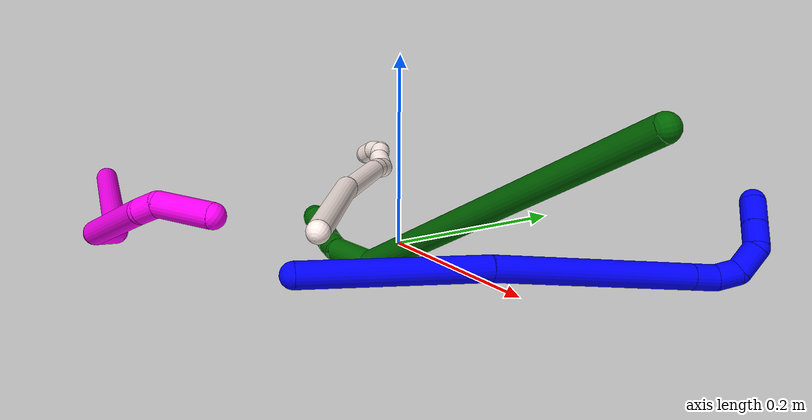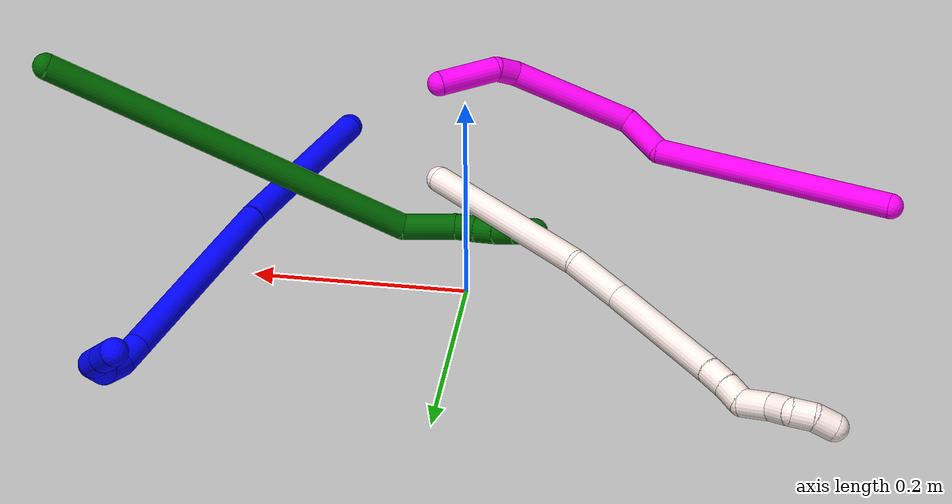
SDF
<sdf version="1.7">
 <world name="default">
  <model name="1">
   <static>0</static>
   <link name="1">
    <collision name="collision-cylinder-e_1_1_4">
     <pose>0.017585 0.034183 -0.079534 -2.73567 0.200402 -0.90886</pose>
     <geometry><cylinder><radius>0.0125</radius><length>0.176673</length></cylinder></geometry>
     <surface>
      <friction><ode><mu>1.16</mu><mu2>1.16</mu2><slip1>0</slip1><slip2>0</slip2></ode></friction>
      <contact><ode><kp>1e+06</kp><kd>1</kd><max_vel>0</max_vel><min_depth>0.001</min_depth></ode></contact>
     </surface>
    </collision>
    <visual name="visual-cylinder-e_1_1_4">
     <pose>0.017585 0.034183 -0.079534 -2.73567 0.200402 -0.90886</pose>
     <geometry><cylinder><radius>0.0125</radius><length>0.176673</length></cylinder></geometry>
     <material><ambient>0 0 1 1</ambient></material>
    </visual>
    <collision name="collision-cylinder-e_2_4_5">
     <pose>0.054802 0.098646 -0.250079 -2.82042 0.201903 -1.1177</pose>
     <geometry><cylinder><radius>0.0125</radius><length>0.19581</length></cylinder></geometry>
     <surface>
      <friction><ode><mu>1.16</mu><mu2>1.16</mu2><slip1>0</slip1><slip2>0</slip2></ode></friction>
      <contact><ode><kp>1e+06</kp><kd>1</kd><max_vel>0</max_vel><min_depth>0.001</min_depth></ode></contact>
     </surface>
    </collision>
    <visual name="visual-cylinder-e_2_4_5">
     <pose>0.054802 0.098646 -0.250079 -2.82042 0.201903 -1.1177</pose>
     <geometry><cylinder><radius>0.0125</radius><length>0.19581</length></cylinder></geometry>
     <material><ambient>0 0 1 1</ambient></material>
    </visual>
    <collision name="collision-cylinder-e_3_5_6">
     <pose>0.076947 0.132714 -0.352514 -2.82135 0.205731 -1.13746</pose>
     <geometry><cylinder><radius>0.0125</radius><length>0.024589</length></cylinder></geometry>
     <surface>
      <friction><ode><mu>1.16</mu><mu2>1.16</mu2><slip1>0</slip1><slip2>0</slip2></ode></friction>
      <contact><ode><kp>1e+06</kp><kd>1</kd><max_vel>0</max_vel><min_depth>0.001</min_depth></ode></contact>
     </surface>
    </collision>
    <visual name="visual-cylinder-e_3_5_6">
     <pose>0.076947 0.132714 -0.352514 -2.82135 0.205731 -1.13746</pose>
     <geometry><cylinder><radius>0.0125</radius><length>0.024589</length></cylinder></geometry>
     <material><ambient>0 0 1 1</ambient></material>
    </visual>
    <collision name="collision-cylinder-e_4_6_7">
     <pose>0.081722 0.143566 -0.37281 -2.46918 0.19701 -0.551176</pose>
     <geometry><cylinder><radius>0.0125</radius><length>0.02313</length></cylinder></geometry>
     <surface>
      <friction><ode><mu>1.16</mu><mu2>1.16</mu2><slip1>0</slip1><slip2>0</slip2></ode></friction>
      <contact><ode><kp>1e+06</kp><kd>1</kd><max_vel>0</max_vel><min_depth>0.001</min_depth></ode></contact>
     </surface>
    </collision>
    <visual name="visual-cylinder-e_4_6_7">
     <pose>0.081722 0.143566 -0.37281 -2.46918 0.19701 -0.551176</pose>
     <geometry><cylinder><radius>0.0125</radius><length>0.02313</length></cylinder></geometry>
     <material><ambient>0 0 1 1</ambient></material>
    </visual>
    <collision name="collision-cylinder-e_5_7_8">
     <pose>0.081464 0.163594 -0.386623 -1.93493 -0.179819 0.260198</pose>
     <geometry><cylinder><radius>0.0125</radius><length>0.028201</length></cylinder></geometry>
     <surface>
      <friction><ode><mu>1.16</mu><mu2>1.16</mu2><slip1>0</slip1><slip2>0</slip2></ode></friction>
      <contact><ode><kp>1e+06</kp><kd>1</kd><max_vel>0</max_vel><min_depth>0.001</min_depth></ode></contact>
     </surface>
    </collision>
    <visual name="visual-cylinder-e_5_7_8">
     <pose>0.081464 0.163594 -0.386623 -1.93493 -0.179819 0.260198</pose>
     <geometry><cylinder><radius>0.0125</radius><length>0.028201</length></cylinder></geometry>
     <material><ambient>0 0 1 1</ambient></material>
    </visual>
    <collision name="collision-cylinder-e_6_8_9">
     <pose>0.069244 0.183883 -0.393903 -1.87991 -0.900366 1.16906</pose>
     <geometry><cylinder><radius>0.0125</radius><length>0.024755</length></cylinder></geometry>
     <surface>
      <friction><ode><mu>1.16</mu><mu2>1.16</mu2><slip1>0</slip1><slip2>0</slip2></ode></friction>
      <contact><ode><kp>1e+06</kp><kd>1</kd><max_vel>0</max_vel><min_depth>0.001</min_depth></ode></contact>
     </surface>
    </collision>
    <visual name="visual-cylinder-e_6_8_9">
     <pose>0.069244 0.183883 -0.393903 -1.87991 -0.900366 1.16906</pose>
     <geometry><cylinder><radius>0.0125</radius><length>0.024755</length></cylinder></geometry>
     <material><ambient>0 0 1 1</ambient></material>
    </visual>
    <collision name="collision-cylinder-e_7_9_2">
     <pose>0.049068 0.199212 -0.398754 -1.87489 -0.8957 1.15874</pose>
     <geometry><cylinder><radius>0.0125</radius><length>0.026842</length></cylinder></geometry>
     <surface>
      <friction><ode><mu>1.16</mu><mu2>1.16</mu2><slip1>0</slip1><slip2>0</slip2></ode></friction>
      <contact><ode><kp>1e+06</kp><kd>1</kd><max_vel>0</max_vel><min_depth>0.001</min_depth></ode></contact>
     </surface>
    </collision>
    <visual name="visual-cylinder-e_7_9_2">
     <pose>0.049068 0.199212 -0.398754 -1.87489 -0.8957 1.15874</pose>
     <geometry><cylinder><radius>0.0125</radius><length>0.026842</length></cylinder></geometry>
     <material><ambient>0 0 1 1</ambient></material>
    </visual>
    <collision name="collision-sphere-2">
     <pose>0.038591 0.207215 -0.401266 0 -0 0</pose>
     <geometry><sphere><radius>0.0125</radius></sphere></geometry>
     <surface>
      <friction><ode><mu>1.16</mu><mu2>1.16</mu2><slip1>0</slip1><slip2>0</slip2></ode></friction>
      <contact><ode><kp>1e+06</kp><kd>1</kd><max_vel>0</max_vel><min_depth>0.001</min_depth></ode></contact>
     </surface>
    </collision>
    <visual name="visual-sphere-2">
     <pose>0.038591 0.207215 -0.401266 0 -0 0</pose>
     <geometry><sphere><radius>0.0125</radius></sphere></geometry>
     <material><ambient>0 0 1 1</ambient></material>
    </visual>
    <collision name="collision-sphere-9">
     <pose>0.059545 0.191209 -0.396243 0 -0 0</pose>
     <geometry><sphere><radius>0.0125</radius></sphere></geometry>
     <surface>
      <friction><ode><mu>1.16</mu><mu2>1.16</mu2><slip1>0</slip1><slip2>0</slip2></ode></friction>
      <contact><ode><kp>1e+06</kp><kd>1</kd><max_vel>0</max_vel><min_depth>0.001</min_depth></ode></contact>
     </surface>
    </collision>
    <visual name="visual-sphere-9">
     <pose>0.059545 0.191209 -0.396243 0 -0 0</pose>
     <geometry><sphere><radius>0.0125</radius></sphere></geometry>
     <material><ambient>0 0 1 1</ambient></material>
    </visual>
    <collision name="collision-sphere-4">
     <pose>0.035169 0.068367 -0.159068 0 -0 0</pose>
     <geometry><sphere><radius>0.0125</radius></sphere></geometry>
     <surface>
      <friction><ode><mu>1.16</mu><mu2>1.16</mu2><slip1>0</slip1><slip2>0</slip2></ode></friction>
      <contact><ode><kp>1e+06</kp><kd>1</kd><max_vel>0</max_vel><min_depth>0.001</min_depth></ode></contact>
     </surface>
    </collision>
    <visual name="visual-sphere-4">
     <pose>0.035169 0.068367 -0.159068 0 -0 0</pose>
     <geometry><sphere><radius>0.0125</radius></sphere></geometry>
     <material><ambient>0 0 1 1</ambient></material>
    </visual>
    <collision name="collision-sphere-1">
     <geometry><sphere><radius>0.0125</radius></sphere></geometry>
     <surface>
      <friction><ode><mu>1.16</mu><mu2>1.16</mu2><slip1>0</slip1><slip2>0</slip2></ode></friction>
      <contact><ode><kp>1e+06</kp><kd>1</kd><max_vel>0</max_vel><min_depth>0.001</min_depth></ode></contact>
     </surface>
    </collision>
    <visual name="visual-sphere-1">
     <geometry><sphere><radius>0.0125</radius></sphere></geometry>
     <material><ambient>0 0 1 1</ambient></material>
    </visual>
    <collision name="collision-sphere-8">
     <pose>0.078942 0.176557 -0.391564 0 -0 0</pose>
     <geometry><sphere><radius>0.0125</radius></sphere></geometry>
     <surface>
      <friction><ode><mu>1.16</mu><mu2>1.16</mu2><slip1>0</slip1><slip2>0</slip2></ode></friction>
      <contact><ode><kp>1e+06</kp><kd>1</kd><max_vel>0</max_vel><min_depth>0.001</min_depth></ode></contact>
     </surface>
    </collision>
    <visual name="visual-sphere-8">
     <pose>0.078942 0.176557 -0.391564 0 -0 0</pose>
     <geometry><sphere><radius>0.0125</radius></sphere></geometry>
     <material><ambient>0 0 1 1</ambient></material>
    </visual>
    <collision name="collision-sphere-5">
     <pose>0.074436 0.128925 -0.341091 0 -0 0</pose>
     <geometry><sphere><radius>0.0125</radius></sphere></geometry>
     <surface>
      <friction><ode><mu>1.16</mu><mu2>1.16</mu2><slip1>0</slip1><slip2>0</slip2></ode></friction>
      <contact><ode><kp>1e+06</kp><kd>1</kd><max_vel>0</max_vel><min_depth>0.001</min_depth></ode></contact>
     </surface>
    </collision>
    <visual name="visual-sphere-5">
     <pose>0.074436 0.128925 -0.341091 0 -0 0</pose>
     <geometry><sphere><radius>0.0125</radius></sphere></geometry>
     <material><ambient>0 0 1 1</ambient></material>
    </visual>
    <collision name="collision-sphere-6">
     <pose>0.079459 0.136502 -0.363937 0 -0 0</pose>
     <geometry><sphere><radius>0.0125</radius></sphere></geometry>
     <surface>
      <friction><ode><mu>1.16</mu><mu2>1.16</mu2><slip1>0</slip1><slip2>0</slip2></ode></friction>
      <contact><ode><kp>1e+06</kp><kd>1</kd><max_vel>0</max_vel><min_depth>0.001</min_depth></ode></contact>
     </surface>
    </collision>
    <visual name="visual-sphere-6">
     <pose>0.079459 0.136502 -0.363937 0 -0 0</pose>
     <geometry><sphere><radius>0.0125</radius></sphere></geometry>
     <material><ambient>0 0 1 1</ambient></material>
    </visual>
    <collision name="collision-sphere-7">
     <pose>0.083986 0.15063 -0.381682 0 -0 0</pose>
     <geometry><sphere><radius>0.0125</radius></sphere></geometry>
     <surface>
      <friction><ode><mu>1.16</mu><mu2>1.16</mu2><slip1>0</slip1><slip2>0</slip2></ode></friction>
      <contact><ode><kp>1e+06</kp><kd>1</kd><max_vel>0</max_vel><min_depth>0.001</min_depth></ode></contact>
     </surface>
    </collision>
    <visual name="visual-sphere-7">
     <pose>0.083986 0.15063 -0.381682 0 -0 0</pose>
     <geometry><sphere><radius>0.0125</radius></sphere></geometry>
     <material><ambient>0 0 1 1</ambient></material>
    </visual>
    <inertial>
     <pose>0.045897 0.092904 -0.223336 0 -0 0</pose>
     <mass>0.5</mass>
     <inertia>
      <ixx>-0.000356</ixx>
      <ixy>0</ixy>
      <ixz>0</ixz>
      <iyy>-0.001363</iyy>
      <iyz>0</iyz>
      <izz>-0.000632</izz>
     </inertia>
    </inertial>
   </link>
   <pose>0.148053 -0.205701 0.042931 1.1837 0.25726 -0.151642</pose>
  </model>
  <model name="6">
   <static>0</static>
   <link name="6">
    <collision name="collision-cylinder-e_1_1_4">
     <pose>-0.135817 0.078696 -0.096194 -2.45592 -0.829713 1.77944</pose>
     <geometry><cylinder><radius>0.0125</radius><length>0.368199</length></cylinder></geometry>
     <surface>
      <friction><ode><mu>1.16</mu><mu2>1.16</mu2><slip1>0</slip1><slip2>0</slip2></ode></friction>
      <contact><ode><kp>1e+06</kp><kd>1</kd><max_vel>0</max_vel><min_depth>0.001</min_depth></ode></contact>
     </surface>
    </collision>
    <visual name="visual-cylinder-e_1_1_4">
     <pose>-0.135817 0.078696 -0.096194 -2.45592 -0.829713 1.77944</pose>
     <geometry><cylinder><radius>0.0125</radius><length>0.368199</length></cylinder></geometry>
     <material><ambient>0 0.392157 0.003922 1</ambient></material>
    </visual>
    <collision name="collision-cylinder-e_2_4_5">
     <pose>-0.294406 0.155505 -0.2039 2.97917 -1.09737 -2.87687</pose>
     <geometry><cylinder><radius>0.0125</radius><length>0.051173</length></cylinder></geometry>
     <surface>
      <friction><ode><mu>1.16</mu><mu2>1.16</mu2><slip1>0</slip1><slip2>0</slip2></ode></friction>
      <contact><ode><kp>1e+06</kp><kd>1</kd><max_vel>0</max_vel><min_depth>0.001</min_depth></ode></contact>
     </surface>
    </collision>
    <visual name="visual-cylinder-e_2_4_5">
     <pose>-0.294406 0.155505 -0.2039 2.97917 -1.09737 -2.87687</pose>
     <geometry><cylinder><radius>0.0125</radius><length>0.051173</length></cylinder></geometry>
     <material><ambient>0 0.392157 0.003922 1</ambient></material>
    </visual>
    <collision name="collision-cylinder-e_3_5_6">
     <pose>-0.32724 0.15296 -0.216869 2.71722 -1.41328 -2.64722</pose>
     <geometry><cylinder><radius>0.0125</radius><length>0.020374</length></cylinder></geometry>
     <surface>
      <friction><ode><mu>1.16</mu><mu2>1.16</mu2><slip1>0</slip1><slip2>0</slip2></ode></friction>
      <contact><ode><kp>1e+06</kp><kd>1</kd><max_vel>0</max_vel><min_depth>0.001</min_depth></ode></contact>
     </surface>
    </collision>
    <visual name="visual-cylinder-e_3_5_6">
     <pose>-0.32724 0.15296 -0.216869 2.71722 -1.41328 -2.64722</pose>
     <geometry><cylinder><radius>0.0125</radius><length>0.020374</length></cylinder></geometry>
     <material><ambient>0 0.392157 0.003922 1</ambient></material>
    </visual>
    <collision name="collision-cylinder-e_4_6_7">
     <pose>-0.347243 0.150982 -0.219117 2.11107 -1.41711 -1.97378</pose>
     <geometry><cylinder><radius>0.0125</radius><length>0.020121</length></cylinder></geometry>
     <surface>
      <friction><ode><mu>1.16</mu><mu2>1.16</mu2><slip1>0</slip1><slip2>0</slip2></ode></friction>
      <contact><ode><kp>1e+06</kp><kd>1</kd><max_vel>0</max_vel><min_depth>0.001</min_depth></ode></contact>
     </surface>
    </collision>
    <visual name="visual-cylinder-e_4_6_7">
     <pose>-0.347243 0.150982 -0.219117 2.11107 -1.41711 -1.97378</pose>
     <geometry><cylinder><radius>0.0125</radius><length>0.020121</length></cylinder></geometry>
     <material><ambient>0 0.392157 0.003922 1</ambient></material>
    </visual>
    <collision name="collision-cylinder-e_5_7_8">
     <pose>-0.36696 0.147529 -0.220543 1.8595 -1.34705 -1.63791</pose>
     <geometry><cylinder><radius>0.0125</radius><length>0.020049</length></cylinder></geometry>
     <surface>
      <friction><ode><mu>1.16</mu><mu2>1.16</mu2><slip1>0</slip1><slip2>0</slip2></ode></friction>
      <contact><ode><kp>1e+06</kp><kd>1</kd><max_vel>0</max_vel><min_depth>0.001</min_depth></ode></contact>
     </surface>
    </collision>
    <visual name="visual-cylinder-e_5_7_8">
     <pose>-0.36696 0.147529 -0.220543 1.8595 -1.34705 -1.63791</pose>
     <geometry><cylinder><radius>0.0125</radius><length>0.020049</length></cylinder></geometry>
     <material><ambient>0 0.392157 0.003922 1</ambient></material>
    </visual>
    <collision name="collision-cylinder-e_6_8_2">
     <pose>-0.386479 0.143062 -0.221838 1.84718 -1.32676 -1.60427</pose>
     <geometry><cylinder><radius>0.0125</radius><length>0.020083</length></cylinder></geometry>
     <surface>
      <friction><ode><mu>1.16</mu><mu2>1.16</mu2><slip1>0</slip1><slip2>0</slip2></ode></friction>
      <contact><ode><kp>1e+06</kp><kd>1</kd><max_vel>0</max_vel><min_depth>0.001</min_depth></ode></contact>
     </surface>
    </collision>
    <visual name="visual-cylinder-e_6_8_2">
     <pose>-0.386479 0.143062 -0.221838 1.84718 -1.32676 -1.60427</pose>
     <geometry><cylinder><radius>0.0125</radius><length>0.020083</length></cylinder></geometry>
     <material><ambient>0 0.392157 0.003922 1</ambient></material>
    </visual>
    <collision name="collision-sphere-2">
     <pose>-0.396223 0.140728 -0.2225 0 -0 0</pose>
     <geometry><sphere><radius>0.0125</radius></sphere></geometry>
     <surface>
      <friction><ode><mu>1.16</mu><mu2>1.16</mu2><slip1>0</slip1><slip2>0</slip2></ode></friction>
      <contact><ode><kp>1e+06</kp><kd>1</kd><max_vel>0</max_vel><min_depth>0.001</min_depth></ode></contact>
     </surface>
    </collision>
    <visual name="visual-sphere-2">
     <pose>-0.396223 0.140728 -0.2225 0 -0 0</pose>
     <geometry><sphere><radius>0.0125</radius></sphere></geometry>
     <material><ambient>0 0.392157 0.003922 1</ambient></material>
    </visual>
    <collision name="collision-sphere-4">
     <pose>-0.271634 0.157391 -0.192388 0 -0 0</pose>
     <geometry><sphere><radius>0.0125</radius></sphere></geometry>
     <surface>
      <friction><ode><mu>1.16</mu><mu2>1.16</mu2><slip1>0</slip1><slip2>0</slip2></ode></friction>
      <contact><ode><kp>1e+06</kp><kd>1</kd><max_vel>0</max_vel><min_depth>0.001</min_depth></ode></contact>
     </surface>
    </collision>
    <visual name="visual-sphere-4">
     <pose>-0.271634 0.157391 -0.192388 0 -0 0</pose>
     <geometry><sphere><radius>0.0125</radius></sphere></geometry>
     <material><ambient>0 0.392157 0.003922 1</ambient></material>
    </visual>
    <collision name="collision-sphere-1">
     <geometry><sphere><radius>0.0125</radius></sphere></geometry>
     <surface>
      <friction><ode><mu>1.16</mu><mu2>1.16</mu2><slip1>0</slip1><slip2>0</slip2></ode></friction>
      <contact><ode><kp>1e+06</kp><kd>1</kd><max_vel>0</max_vel><min_depth>0.001</min_depth></ode></contact>
     </surface>
    </collision>
    <visual name="visual-sphere-1">
     <geometry><sphere><radius>0.0125</radius></sphere></geometry>
     <material><ambient>0 0.392157 0.003922 1</ambient></material>
    </visual>
    <collision name="collision-sphere-8">
     <pose>-0.376734 0.145396 -0.221176 0 -0 0</pose>
     <geometry><sphere><radius>0.0125</radius></sphere></geometry>
     <surface>
      <friction><ode><mu>1.16</mu><mu2>1.16</mu2><slip1>0</slip1><slip2>0</slip2></ode></friction>
      <contact><ode><kp>1e+06</kp><kd>1</kd><max_vel>0</max_vel><min_depth>0.001</min_depth></ode></contact>
     </surface>
    </collision>
    <visual name="visual-sphere-8">
     <pose>-0.376734 0.145396 -0.221176 0 -0 0</pose>
     <geometry><sphere><radius>0.0125</radius></sphere></geometry>
     <material><ambient>0 0.392157 0.003922 1</ambient></material>
    </visual>
    <collision name="collision-sphere-5">
     <pose>-0.317179 0.153618 -0.215413 0 -0 0</pose>
     <geometry><sphere><radius>0.0125</radius></sphere></geometry>
     <surface>
      <friction><ode><mu>1.16</mu><mu2>1.16</mu2><slip1>0</slip1><slip2>0</slip2></ode></friction>
      <contact><ode><kp>1e+06</kp><kd>1</kd><max_vel>0</max_vel><min_depth>0.001</min_depth></ode></contact>
     </surface>
    </collision>
    <visual name="visual-sphere-5">
     <pose>-0.317179 0.153618 -0.215413 0 -0 0</pose>
     <geometry><sphere><radius>0.0125</radius></sphere></geometry>
     <material><ambient>0 0.392157 0.003922 1</ambient></material>
    </visual>
    <collision name="collision-sphere-6">
     <pose>-0.337301 0.152302 -0.218325 0 -0 0</pose>
     <geometry><sphere><radius>0.0125</radius></sphere></geometry>
     <surface>
      <friction><ode><mu>1.16</mu><mu2>1.16</mu2><slip1>0</slip1><slip2>0</slip2></ode></friction>
      <contact><ode><kp>1e+06</kp><kd>1</kd><max_vel>0</max_vel><min_depth>0.001</min_depth></ode></contact>
     </surface>
    </collision>
    <visual name="visual-sphere-6">
     <pose>-0.337301 0.152302 -0.218325 0 -0 0</pose>
     <geometry><sphere><radius>0.0125</radius></sphere></geometry>
     <material><ambient>0 0.392157 0.003922 1</ambient></material>
    </visual>
    <collision name="collision-sphere-7">
     <pose>-0.357185 0.149661 -0.21991 0 -0 0</pose>
     <geometry><sphere><radius>0.0125</radius></sphere></geometry>
     <surface>
      <friction><ode><mu>1.16</mu><mu2>1.16</mu2><slip1>0</slip1><slip2>0</slip2></ode></friction>
      <contact><ode><kp>1e+06</kp><kd>1</kd><max_vel>0</max_vel><min_depth>0.001</min_depth></ode></contact>
     </surface>
    </collision>
    <visual name="visual-sphere-7">
     <pose>-0.357185 0.149661 -0.21991 0 -0 0</pose>
     <geometry><sphere><radius>0.0125</radius></sphere></geometry>
     <material><ambient>0 0.392157 0.003922 1</ambient></material>
    </visual>
    <inertial>
     <pose>-0.187693 0.097837 -0.127114 0 -0 0</pose>
     <mass>0.5</mass>
     <inertia>
      <ixx>0.002133</ixx>
      <ixy>0</ixy>
      <ixz>0</ixz>
      <iyy>0.005361</iyy>
      <iyz>0</iyz>
      <izz>0.001297</izz>
     </inertia>
    </inertial>
   </link>
   <pose>0.388503 -0.025128 0.192936 -1.39072 0.028663 -0.348787</pose>
  </model>
  <model name="10">
   <static>0</static>
   <link name="10">
    <collision name="collision-cylinder-e_1_1_4">
     <pose>-0.021409 0.011953 -0.018097 -2.55789 -0.77891 1.87781</pose>
     <geometry><cylinder><radius>0.0125</radius><length>0.060949</length></cylinder></geometry>
     <surface>
      <friction><ode><mu>1.16</mu><mu2>1.16</mu2><slip1>0</slip1><slip2>0</slip2></ode></friction>
      <contact><ode><kp>1e+06</kp><kd>1</kd><max_vel>0</max_vel><min_depth>0.001</min_depth></ode></contact>
     </surface>
    </collision>
    <visual name="visual-cylinder-e_1_1_4">
     <pose>-0.021409 0.011953 -0.018097 -2.55789 -0.77891 1.87781</pose>
     <geometry><cylinder><radius>0.0125</radius><length>0.060949</length></cylinder></geometry>
     <material><ambient>1 0 0.964706 1</ambient></material>
    </visual>
    <collision name="collision-cylinder-e_2_4_5">
     <pose>-0.050473 0.032113 -0.038909 -1.89024 -0.724852 0.966577</pose>
     <geometry><cylinder><radius>0.0125</radius><length>0.023095</length></cylinder></geometry>
     <surface>
      <friction><ode><mu>1.16</mu><mu2>1.16</mu2><slip1>0</slip1><slip2>0</slip2></ode></friction>
      <contact><ode><kp>1e+06</kp><kd>1</kd><max_vel>0</max_vel><min_depth>0.001</min_depth></ode></contact>
     </surface>
    </collision>
    <visual name="visual-cylinder-e_2_4_5">
     <pose>-0.050473 0.032113 -0.038909 -1.89024 -0.724852 0.966577</pose>
     <geometry><cylinder><radius>0.0125</radius><length>0.023095</length></cylinder></geometry>
     <material><ambient>1 0 0.964706 1</ambient></material>
    </visual>
    <collision name="collision-cylinder-e_3_5_6">
     <pose>-0.114607 0.067266 -0.040007 -1.51088 -1.12492 1.07155</pose>
     <geometry><cylinder><radius>0.0125</radius><length>0.125194</length></cylinder></geometry>
     <surface>
      <friction><ode><mu>1.16</mu><mu2>1.16</mu2><slip1>0</slip1><slip2>0</slip2></ode></friction>
      <contact><ode><kp>1e+06</kp><kd>1</kd><max_vel>0</max_vel><min_depth>0.001</min_depth></ode></contact>
     </surface>
    </collision>
    <visual name="visual-cylinder-e_3_5_6">
     <pose>-0.114607 0.067266 -0.040007 -1.51088 -1.12492 1.07155</pose>
     <geometry><cylinder><radius>0.0125</radius><length>0.125194</length></cylinder></geometry>
     <material><ambient>1 0 0.964706 1</ambient></material>
    </visual>
    <collision name="collision-cylinder-e_4_6_7">
     <pose>-0.192281 0.090212 -0.025916 0.310338 -1.0172 -0.173983</pose>
     <geometry><cylinder><radius>0.0125</radius><length>0.049838</length></cylinder></geometry>
     <surface>
      <friction><ode><mu>1.16</mu><mu2>1.16</mu2><slip1>0</slip1><slip2>0</slip2></ode></friction>
      <contact><ode><kp>1e+06</kp><kd>1</kd><max_vel>0</max_vel><min_depth>0.001</min_depth></ode></contact>
     </surface>
    </collision>
    <visual name="visual-cylinder-e_4_6_7">
     <pose>-0.192281 0.090212 -0.025916 0.310338 -1.0172 -0.173983</pose>
     <geometry><cylinder><radius>0.0125</radius><length>0.049838</length></cylinder></geometry>
     <material><ambient>1 0 0.964706 1</ambient></material>
    </visual>
    <collision name="collision-cylinder-e_5_7_2">
     <pose>-0.333527 0.076241 -0.013309 1.55769 -1.48794 -1.47488</pose>
     <geometry><cylinder><radius>0.0125</radius><length>0.240923</length></cylinder></geometry>
     <surface>
      <friction><ode><mu>1.16</mu><mu2>1.16</mu2><slip1>0</slip1><slip2>0</slip2></ode></friction>
      <contact><ode><kp>1e+06</kp><kd>1</kd><max_vel>0</max_vel><min_depth>0.001</min_depth></ode></contact>
     </surface>
    </collision>
    <visual name="visual-cylinder-e_5_7_2">
     <pose>-0.333527 0.076241 -0.013309 1.55769 -1.48794 -1.47488</pose>
     <geometry><cylinder><radius>0.0125</radius><length>0.240923</length></cylinder></geometry>
     <material><ambient>1 0 0.964706 1</ambient></material>
    </visual>
    <collision name="collision-sphere-2">
     <pose>-0.453575 0.066272 -0.013179 0 -0 0</pose>
     <geometry><sphere><radius>0.0125</radius></sphere></geometry>
     <surface>
      <friction><ode><mu>1.16</mu><mu2>1.16</mu2><slip1>0</slip1><slip2>0</slip2></ode></friction>
      <contact><ode><kp>1e+06</kp><kd>1</kd><max_vel>0</max_vel><min_depth>0.001</min_depth></ode></contact>
     </surface>
    </collision>
    <visual name="visual-sphere-2">
     <pose>-0.453575 0.066272 -0.013179 0 -0 0</pose>
     <geometry><sphere><radius>0.0125</radius></sphere></geometry>
     <material><ambient>1 0 0.964706 1</ambient></material>
    </visual>
    <collision name="collision-sphere-7">
     <pose>-0.213478 0.086211 -0.01344 0 -0 0</pose>
     <geometry><sphere><radius>0.0125</radius></sphere></geometry>
     <surface>
      <friction><ode><mu>1.16</mu><mu2>1.16</mu2><slip1>0</slip1><slip2>0</slip2></ode></friction>
      <contact><ode><kp>1e+06</kp><kd>1</kd><max_vel>0</max_vel><min_depth>0.001</min_depth></ode></contact>
     </surface>
    </collision>
    <visual name="visual-sphere-7">
     <pose>-0.213478 0.086211 -0.01344 0 -0 0</pose>
     <geometry><sphere><radius>0.0125</radius></sphere></geometry>
     <material><ambient>1 0 0.964706 1</ambient></material>
    </visual>
    <collision name="collision-sphere-6">
     <pose>-0.171084 0.094213 -0.038391 0 -0 0</pose>
     <geometry><sphere><radius>0.0125</radius></sphere></geometry>
     <surface>
      <friction><ode><mu>1.16</mu><mu2>1.16</mu2><slip1>0</slip1><slip2>0</slip2></ode></friction>
      <contact><ode><kp>1e+06</kp><kd>1</kd><max_vel>0</max_vel><min_depth>0.001</min_depth></ode></contact>
     </surface>
    </collision>
    <visual name="visual-sphere-6">
     <pose>-0.171084 0.094213 -0.038391 0 -0 0</pose>
     <geometry><sphere><radius>0.0125</radius></sphere></geometry>
     <material><ambient>1 0 0.964706 1</ambient></material>
    </visual>
    <collision name="collision-sphere-5">
     <pose>-0.05813 0.04032 -0.041624 0 -0 0</pose>
     <geometry><sphere><radius>0.0125</radius></sphere></geometry>
     <surface>
      <friction><ode><mu>1.16</mu><mu2>1.16</mu2><slip1>0</slip1><slip2>0</slip2></ode></friction>
      <contact><ode><kp>1e+06</kp><kd>1</kd><max_vel>0</max_vel><min_depth>0.001</min_depth></ode></contact>
     </surface>
    </collision>
    <visual name="visual-sphere-5">
     <pose>-0.05813 0.04032 -0.041624 0 -0 0</pose>
     <geometry><sphere><radius>0.0125</radius></sphere></geometry>
     <material><ambient>1 0 0.964706 1</ambient></material>
    </visual>
    <collision name="collision-sphere-1">
     <geometry><sphere><radius>0.0125</radius></sphere></geometry>
     <surface>
      <friction><ode><mu>1.16</mu><mu2>1.16</mu2><slip1>0</slip1><slip2>0</slip2></ode></friction>
      <contact><ode><kp>1e+06</kp><kd>1</kd><max_vel>0</max_vel><min_depth>0.001</min_depth></ode></contact>
     </surface>
    </collision>
    <visual name="visual-sphere-1">
     <geometry><sphere><radius>0.0125</radius></sphere></geometry>
     <material><ambient>1 0 0.964706 1</ambient></material>
    </visual>
    <collision name="collision-sphere-4">
     <pose>-0.042817 0.023905 -0.036194 0 -0 0</pose>
     <geometry><sphere><radius>0.0125</radius></sphere></geometry>
     <surface>
      <friction><ode><mu>1.16</mu><mu2>1.16</mu2><slip1>0</slip1><slip2>0</slip2></ode></friction>
      <contact><ode><kp>1e+06</kp><kd>1</kd><max_vel>0</max_vel><min_depth>0.001</min_depth></ode></contact>
     </surface>
    </collision>
    <visual name="visual-sphere-4">
     <pose>-0.042817 0.023905 -0.036194 0 -0 0</pose>
     <geometry><sphere><radius>0.0125</radius></sphere></geometry>
     <material><ambient>1 0 0.964706 1</ambient></material>
    </visual>
    <inertial>
     <pose>-0.213512 0.065512 -0.023017 0 -0 0</pose>
     <mass>0.5</mass>
     <inertia><ixx>-7e-06</ixx><ixy>0</ixy><ixz>0</ixz><iyy>0.001317</iyy><iyz>0</iyz><izz>0.001365</izz></inertia>
    </inertial>
   </link>
   <pose>0.062283 -0.240121 0.080032 -2.29149 -0.056669 -0.246817</pose>
  </model>
  <model name="11">
   <static>0</static>
   <link name="11">
    <collision name="collision-cylinder-e_1_1_4">
     <pose>0.029267 -0.032105 0.082296 0.371955 0.319929 0.060695</pose>
     <geometry><cylinder><radius>0.0125</radius><length>0.186117</length></cylinder></geometry>
     <surface>
      <friction><ode><mu>1.16</mu><mu2>1.16</mu2><slip1>0</slip1><slip2>0</slip2></ode></friction>
      <contact><ode><kp>1e+06</kp><kd>1</kd><max_vel>0</max_vel><min_depth>0.001</min_depth></ode></contact>
     </surface>
    </collision>
    <visual name="visual-cylinder-e_1_1_4">
     <pose>0.029267 -0.032105 0.082296 0.371955 0.319929 0.060695</pose>
     <geometry><cylinder><radius>0.0125</radius><length>0.186117</length></cylinder></geometry>
     <material><ambient>1 0.933333 0.909804 1</ambient></material>
    </visual>
    <collision name="collision-cylinder-e_2_4_5">
     <pose>0.072073 -0.077624 0.182689 0.63787 0.54119 0.182689</pose>
     <geometry><cylinder><radius>0.0125</radius><length>0.052564</length></cylinder></geometry>
     <surface>
      <friction><ode><mu>1.16</mu><mu2>1.16</mu2><slip1>0</slip1><slip2>0</slip2></ode></friction>
      <contact><ode><kp>1e+06</kp><kd>1</kd><max_vel>0</max_vel><min_depth>0.001</min_depth></ode></contact>
     </surface>
    </collision>
    <visual name="visual-cylinder-e_2_4_5">
     <pose>0.072073 -0.077624 0.182689 0.63787 0.54119 0.182689</pose>
     <geometry><cylinder><radius>0.0125</radius><length>0.052564</length></cylinder></geometry>
     <material><ambient>1 0.933333 0.909804 1</ambient></material>
    </visual>
    <collision name="collision-cylinder-e_3_5_6">
     <pose>0.098812 -0.117463 0.257155 0.438365 0.208934 0.046704</pose>
     <geometry><cylinder><radius>0.0125</radius><length>0.12728</length></cylinder></geometry>
     <surface>
      <friction><ode><mu>1.16</mu><mu2>1.16</mu2><slip1>0</slip1><slip2>0</slip2></ode></friction>
      <contact><ode><kp>1e+06</kp><kd>1</kd><max_vel>0</max_vel><min_depth>0.001</min_depth></ode></contact>
     </surface>
    </collision>
    <visual name="visual-cylinder-e_3_5_6">
     <pose>0.098812 -0.117463 0.257155 0.438365 0.208934 0.046704</pose>
     <geometry><cylinder><radius>0.0125</radius><length>0.12728</length></cylinder></geometry>
     <material><ambient>1 0.933333 0.909804 1</ambient></material>
    </visual>
    <collision name="collision-cylinder-e_4_6_7">
     <pose>0.114897 -0.149322 0.32347 0.500007 0.249246 0.063954</pose>
     <geometry><cylinder><radius>0.0125</radius><length>0.023389</length></cylinder></geometry>
     <surface>
      <friction><ode><mu>1.16</mu><mu2>1.16</mu2><slip1>0</slip1><slip2>0</slip2></ode></friction>
      <contact><ode><kp>1e+06</kp><kd>1</kd><max_vel>0</max_vel><min_depth>0.001</min_depth></ode></contact>
     </surface>
    </collision>
    <visual name="visual-cylinder-e_4_6_7">
     <pose>0.114897 -0.149322 0.32347 0.500007 0.249246 0.063954</pose>
     <geometry><cylinder><radius>0.0125</radius><length>0.023389</length></cylinder></geometry>
     <material><ambient>1 0.933333 0.909804 1</ambient></material>
    </visual>
    <collision name="collision-cylinder-e_5_7_8">
     <pose>0.12004 -0.160809 0.342323 0.596978 0.206686 0.063799</pose>
     <geometry><cylinder><radius>0.0125</radius><length>0.022009</length></cylinder></geometry>
     <surface>
      <friction><ode><mu>1.16</mu><mu2>1.16</mu2><slip1>0</slip1><slip2>0</slip2></ode></friction>
      <contact><ode><kp>1e+06</kp><kd>1</kd><max_vel>0</max_vel><min_depth>0.001</min_depth></ode></contact>
     </surface>
    </collision>
    <visual name="visual-cylinder-e_5_7_8">
     <pose>0.12004 -0.160809 0.342323 0.596978 0.206686 0.063799</pose>
     <geometry><cylinder><radius>0.0125</radius><length>0.022009</length></cylinder></geometry>
     <material><ambient>1 0.933333 0.909804 1</ambient></material>
    </visual>
    <collision name="collision-cylinder-e_6_8_9">
     <pose>0.128892 -0.166878 0.363814 0.001144 0.482676 0.000282</pose>
     <geometry><cylinder><radius>0.0125</radius><length>0.028413</length></cylinder></geometry>
     <surface>
      <friction><ode><mu>1.16</mu><mu2>1.16</mu2><slip1>0</slip1><slip2>0</slip2></ode></friction>
      <contact><ode><kp>1e+06</kp><kd>1</kd><max_vel>0</max_vel><min_depth>0.001</min_depth></ode></contact>
     </surface>
    </collision>
    <visual name="visual-cylinder-e_6_8_9">
     <pose>0.128892 -0.166878 0.363814 0.001144 0.482676 0.000282</pose>
     <geometry><cylinder><radius>0.0125</radius><length>0.028413</length></cylinder></geometry>
     <material><ambient>1 0.933333 0.909804 1</ambient></material>
    </visual>
    <collision name="collision-cylinder-e_7_9_10">
     <pose>0.137953 -0.167633 0.38612 0.076049 0.24777 0.009474</pose>
     <geometry><cylinder><radius>0.0125</radius><length>0.020117</length></cylinder></geometry>
     <surface>
      <friction><ode><mu>1.16</mu><mu2>1.16</mu2><slip1>0</slip1><slip2>0</slip2></ode></friction>
      <contact><ode><kp>1e+06</kp><kd>1</kd><max_vel>0</max_vel><min_depth>0.001</min_depth></ode></contact>
     </surface>
    </collision>
    <visual name="visual-cylinder-e_7_9_10">
     <pose>0.137953 -0.167633 0.38612 0.076049 0.24777 0.009474</pose>
     <geometry><cylinder><radius>0.0125</radius><length>0.020117</length></cylinder></geometry>
     <material><ambient>1 0.933333 0.909804 1</ambient></material>
    </visual>
    <collision name="collision-cylinder-e_8_10_11">
     <pose>0.148721 -0.169621 0.401307 0.224281 0.976987 0.119555</pose>
     <geometry><cylinder><radius>0.0125</radius><length>0.020032</length></cylinder></geometry>
     <surface>
      <friction><ode><mu>1.16</mu><mu2>1.16</mu2><slip1>0</slip1><slip2>0</slip2></ode></friction>
      <contact><ode><kp>1e+06</kp><kd>1</kd><max_vel>0</max_vel><min_depth>0.001</min_depth></ode></contact>
     </surface>
    </collision>
    <visual name="visual-cylinder-e_8_10_11">
     <pose>0.148721 -0.169621 0.401307 0.224281 0.976987 0.119555</pose>
     <geometry><cylinder><radius>0.0125</radius><length>0.020032</length></cylinder></geometry>
     <material><ambient>1 0.933333 0.909804 1</ambient></material>
    </visual>
    <collision name="collision-cylinder-e_9_11_2">
     <pose>0.165755 -0.174502 0.410138 0.823615 1.05469 0.498162</pose>
     <geometry><cylinder><radius>0.0125</radius><length>0.020079</length></cylinder></geometry>
     <surface>
      <friction><ode><mu>1.16</mu><mu2>1.16</mu2><slip1>0</slip1><slip2>0</slip2></ode></friction>
      <contact><ode><kp>1e+06</kp><kd>1</kd><max_vel>0</max_vel><min_depth>0.001</min_depth></ode></contact>
     </surface>
    </collision>
    <visual name="visual-cylinder-e_9_11_2">
     <pose>0.165755 -0.174502 0.410138 0.823615 1.05469 0.498162</pose>
     <geometry><cylinder><radius>0.0125</radius><length>0.020079</length></cylinder></geometry>
     <material><ambient>1 0.933333 0.909804 1</ambient></material>
    </visual>
    <collision name="collision-sphere-2">
     <pose>0.174487 -0.178136 0.413505 0 -0 0</pose>
     <geometry><sphere><radius>0.0125</radius></sphere></geometry>
     <surface>
      <friction><ode><mu>1.16</mu><mu2>1.16</mu2><slip1>0</slip1><slip2>0</slip2></ode></friction>
      <contact><ode><kp>1e+06</kp><kd>1</kd><max_vel>0</max_vel><min_depth>0.001</min_depth></ode></contact>
     </surface>
    </collision>
    <visual name="visual-sphere-2">
     <pose>0.174487 -0.178136 0.413505 0 -0 0</pose>
     <geometry><sphere><radius>0.0125</radius></sphere></geometry>
     <material><ambient>1 0.933333 0.909804 1</ambient></material>
    </visual>
    <collision name="collision-sphere-11">
     <pose>0.157023 -0.170867 0.406771 0 -0 0</pose>
     <geometry><sphere><radius>0.0125</radius></sphere></geometry>
     <surface>
      <friction><ode><mu>1.16</mu><mu2>1.16</mu2><slip1>0</slip1><slip2>0</slip2></ode></friction>
      <contact><ode><kp>1e+06</kp><kd>1</kd><max_vel>0</max_vel><min_depth>0.001</min_depth></ode></contact>
     </surface>
    </collision>
    <visual name="visual-sphere-11">
     <pose>0.157023 -0.170867 0.406771 0 -0 0</pose>
     <geometry><sphere><radius>0.0125</radius></sphere></geometry>
     <material><ambient>1 0.933333 0.909804 1</ambient></material>
    </visual>
    <collision name="collision-sphere-10">
     <pose>0.14042 -0.168374 0.395844 0 -0 0</pose>
     <geometry><sphere><radius>0.0125</radius></sphere></geometry>
     <surface>
      <friction><ode><mu>1.16</mu><mu2>1.16</mu2><slip1>0</slip1><slip2>0</slip2></ode></friction>
      <contact><ode><kp>1e+06</kp><kd>1</kd><max_vel>0</max_vel><min_depth>0.001</min_depth></ode></contact>
     </surface>
    </collision>
    <visual name="visual-sphere-10">
     <pose>0.14042 -0.168374 0.395844 0 -0 0</pose>
     <geometry><sphere><radius>0.0125</radius></sphere></geometry>
     <material><ambient>1 0.933333 0.909804 1</ambient></material>
    </visual>
    <collision name="collision-sphere-9">
     <pose>0.135486 -0.166892 0.376397 0 -0 0</pose>
     <geometry><sphere><radius>0.0125</radius></sphere></geometry>
     <surface>
      <friction><ode><mu>1.16</mu><mu2>1.16</mu2><slip1>0</slip1><slip2>0</slip2></ode></friction>
      <contact><ode><kp>1e+06</kp><kd>1</kd><max_vel>0</max_vel><min_depth>0.001</min_depth></ode></contact>
     </surface>
    </collision>
    <visual name="visual-sphere-9">
     <pose>0.135486 -0.166892 0.376397 0 -0 0</pose>
     <geometry><sphere><radius>0.0125</radius></sphere></geometry>
     <material><ambient>1 0.933333 0.909804 1</ambient></material>
    </visual>
    <collision name="collision-sphere-4">
     <pose>0.058534 -0.06421 0.164592 0 -0 0</pose>
     <geometry><sphere><radius>0.0125</radius></sphere></geometry>
     <surface>
      <friction><ode><mu>1.16</mu><mu2>1.16</mu2><slip1>0</slip1><slip2>0</slip2></ode></friction>
      <contact><ode><kp>1e+06</kp><kd>1</kd><max_vel>0</max_vel><min_depth>0.001</min_depth></ode></contact>
     </surface>
    </collision>
    <visual name="visual-sphere-4">
     <pose>0.058534 -0.06421 0.164592 0 -0 0</pose>
     <geometry><sphere><radius>0.0125</radius></sphere></geometry>
     <material><ambient>1 0.933333 0.909804 1</ambient></material>
    </visual>
    <collision name="collision-sphere-1">
     <geometry><sphere><radius>0.0125</radius></sphere></geometry>
     <surface>
      <friction><ode><mu>1.16</mu><mu2>1.16</mu2><slip1>0</slip1><slip2>0</slip2></ode></friction>
      <contact><ode><kp>1e+06</kp><kd>1</kd><max_vel>0</max_vel><min_depth>0.001</min_depth></ode></contact>
     </surface>
    </collision>
    <visual name="visual-sphere-1">
     <geometry><sphere><radius>0.0125</radius></sphere></geometry>
     <material><ambient>1 0.933333 0.909804 1</ambient></material>
    </visual>
    <collision name="collision-sphere-8">
     <pose>0.122298 -0.166864 0.35123 0 -0 0</pose>
     <geometry><sphere><radius>0.0125</radius></sphere></geometry>
     <surface>
      <friction><ode><mu>1.16</mu><mu2>1.16</mu2><slip1>0</slip1><slip2>0</slip2></ode></friction>
      <contact><ode><kp>1e+06</kp><kd>1</kd><max_vel>0</max_vel><min_depth>0.001</min_depth></ode></contact>
     </surface>
    </collision>
    <visual name="visual-sphere-8">
     <pose>0.122298 -0.166864 0.35123 0 -0 0</pose>
     <geometry><sphere><radius>0.0125</radius></sphere></geometry>
     <material><ambient>1 0.933333 0.909804 1</ambient></material>
    </visual>
    <collision name="collision-sphere-5">
     <pose>0.085612 -0.091038 0.200785 0 -0 0</pose>
     <geometry><sphere><radius>0.0125</radius></sphere></geometry>
     <surface>
      <friction><ode><mu>1.16</mu><mu2>1.16</mu2><slip1>0</slip1><slip2>0</slip2></ode></friction>
      <contact><ode><kp>1e+06</kp><kd>1</kd><max_vel>0</max_vel><min_depth>0.001</min_depth></ode></contact>
     </surface>
    </collision>
    <visual name="visual-sphere-5">
     <pose>0.085612 -0.091038 0.200785 0 -0 0</pose>
     <geometry><sphere><radius>0.0125</radius></sphere></geometry>
     <material><ambient>1 0.933333 0.909804 1</ambient></material>
    </visual>
    <collision name="collision-sphere-6">
     <pose>0.112012 -0.143888 0.313525 0 -0 0</pose>
     <geometry><sphere><radius>0.0125</radius></sphere></geometry>
     <surface>
      <friction><ode><mu>1.16</mu><mu2>1.16</mu2><slip1>0</slip1><slip2>0</slip2></ode></friction>
      <contact><ode><kp>1e+06</kp><kd>1</kd><max_vel>0</max_vel><min_depth>0.001</min_depth></ode></contact>
     </surface>
    </collision>
    <visual name="visual-sphere-6">
     <pose>0.112012 -0.143888 0.313525 0 -0 0</pose>
     <geometry><sphere><radius>0.0125</radius></sphere></geometry>
     <material><ambient>1 0.933333 0.909804 1</ambient></material>
    </visual>
    <collision name="collision-sphere-7">
     <pose>0.117782 -0.154755 0.333416 0 -0 0</pose>
     <geometry><sphere><radius>0.0125</radius></sphere></geometry>
     <surface>
      <friction><ode><mu>1.16</mu><mu2>1.16</mu2><slip1>0</slip1><slip2>0</slip2></ode></friction>
      <contact><ode><kp>1e+06</kp><kd>1</kd><max_vel>0</max_vel><min_depth>0.001</min_depth></ode></contact>
     </surface>
    </collision>
    <visual name="visual-sphere-7">
     <pose>0.117782 -0.154755 0.333416 0 -0 0</pose>
     <geometry><sphere><radius>0.0125</radius></sphere></geometry>
     <material><ambient>1 0.933333 0.909804 1</ambient></material>
    </visual>
    <inertial>
     <pose>0.079773 -0.094107 0.214258 0 -0 0</pose>
     <mass>0.5</mass>
     <inertia>
      <ixx>0.000766</ixx>
      <ixy>0</ixy>
      <ixz>0</ixz>
      <iyy>0.000722</iyy>
      <iyz>0</iyz>
      <izz>8.3e-05</izz>
     </inertia>
    </inertial>
   </link>
   <pose>0.044107 -0.122456 0.042505 1.10306 0.332388 -2.59048</pose>
  </model>
 </world>
</sdf>
